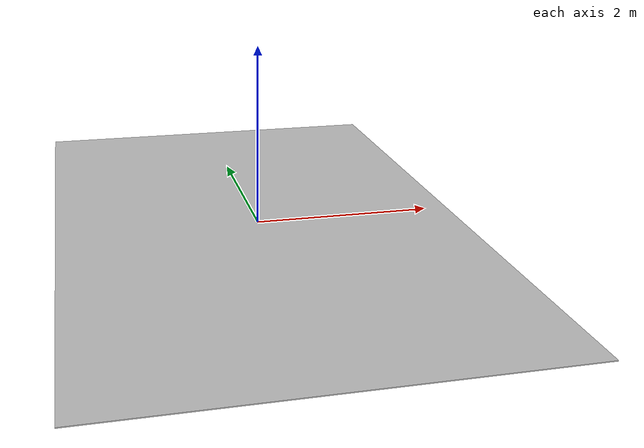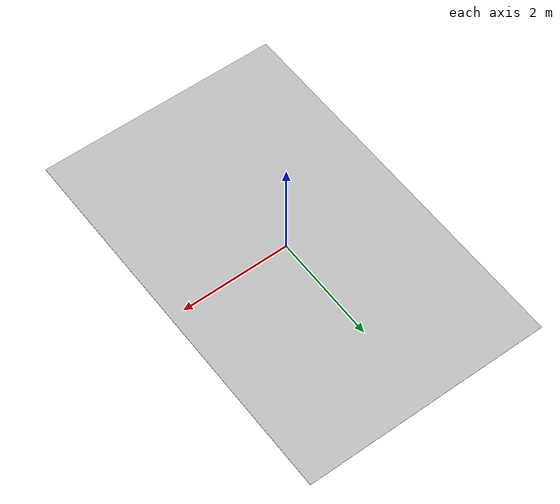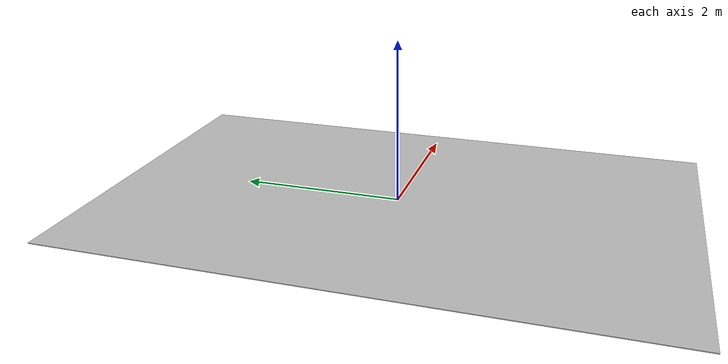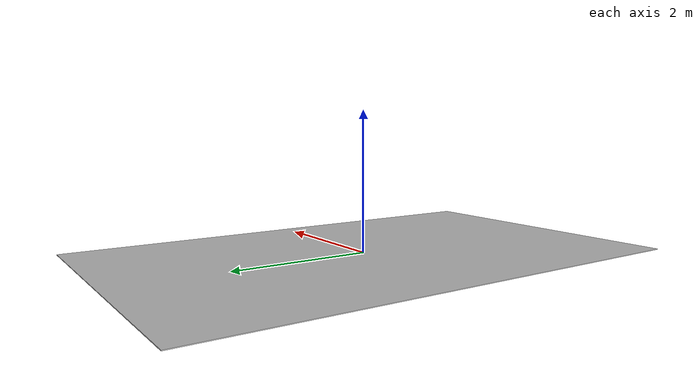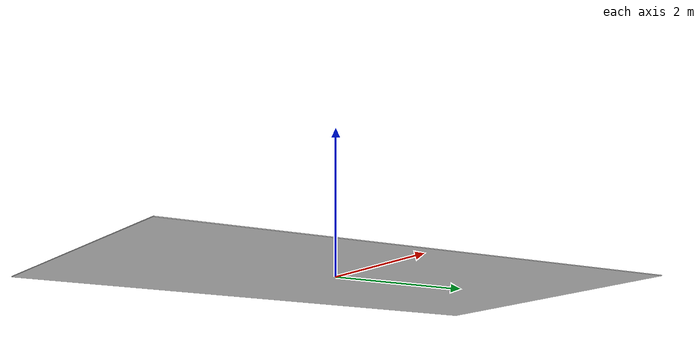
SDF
<?xml version='1.0'?>
<sdf version="1.4">
<model name="robocar_track">
  <pose>0 0 0.01 0 0 0</pose>
    <link name="link">
      <inertial>
        <mass>100.0</mass>
        <inertia>
          <ixx>0.083</ixx>
          <ixy>0.0</ixy>
          <ixz>0.0</ixz>
          <iyy>0.083</iyy>
          <iyz>0.0</iyz>
          <izz>0.083</izz>
        </inertia>
      </inertial>
      <collision name="collision">
        <geometry>
          <box>
            <size>4.5 7.1685 0.01</size>
          </box>
        </geometry>
      </collision>
      <visual name="visual">
        <geometry>
          <box>
            <size>4.5 7.1685 0.01</size>
          </box>
        </geometry>
        <material>
          <script>
            <uri>model://racecar_description/materials/robocar_track.material</uri>
            <name>Robocar_track</name>
          </script>
        </material>
      </visual>
    </link>
  </model>
</sdf>
